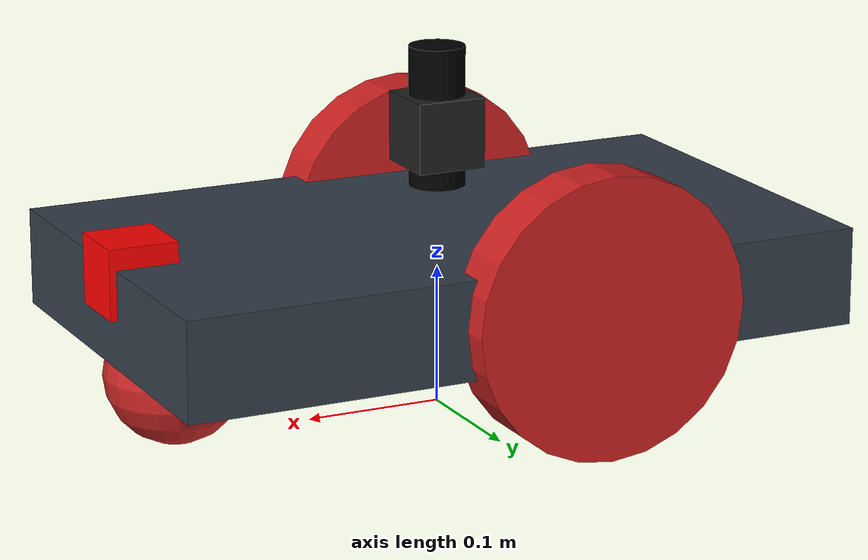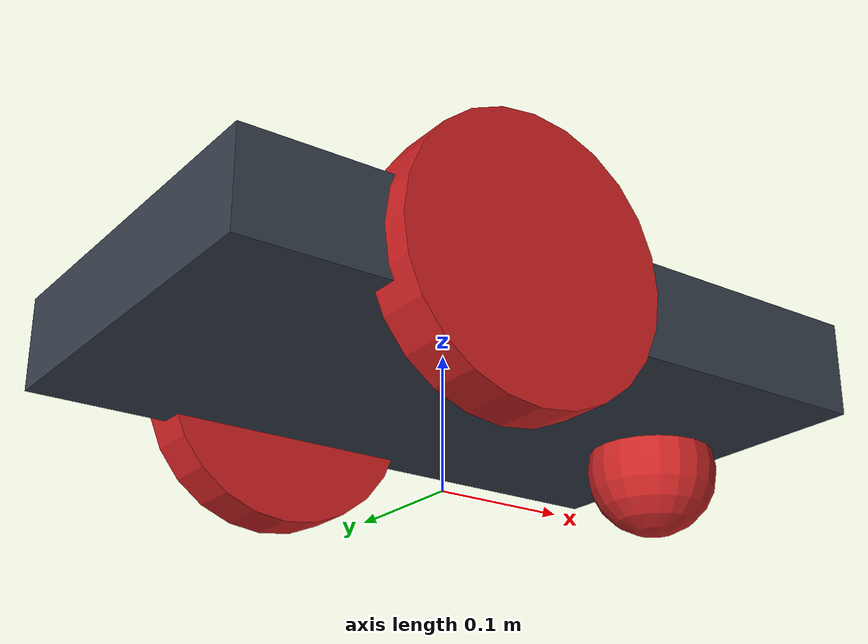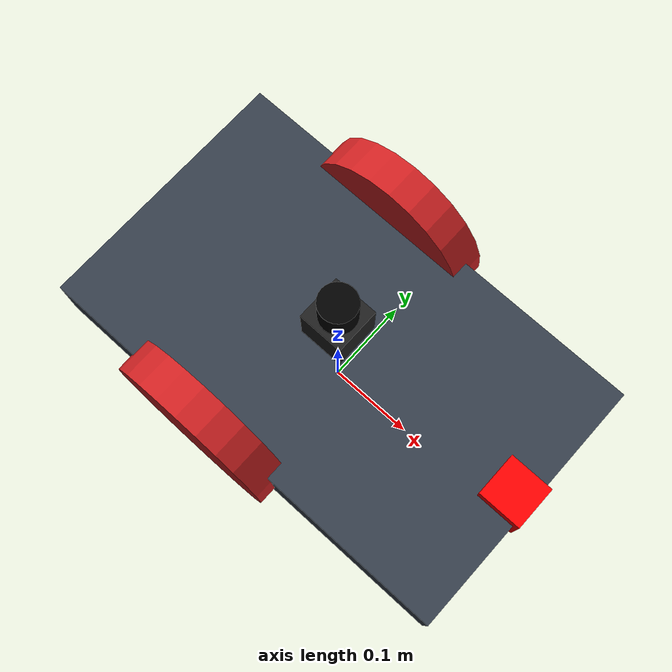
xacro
<?xml version="1.0"?>
<robot xmlns:xacro="http://www.ros.org/wiki/xacro" name="robot_hw2.xacro">
<xacro:include filename="$(find robot_urdf)/urdf/robot_hw2.gazebo"/>

	<xacro:property name="length_wheel" value="0.04" />
	<xacro:property name="radius_wheel" value="0.1" />

	<xacro:macro name="default_inertial" params="mass">
               <inertial>
                       <mass value="${mass}" />
                       <origin rpy="0 1.5707 1.5707" xyz="0 0 0"/>
                       <inertia ixx="0.000526666666667" ixy="0" ixz="0" iyy="0.000526666666667" iyz="0" izz="0.001"/>
               </inertial>
	</xacro:macro>

    <xacro:macro name="wheel_geometry">
		<geometry>
       			<cylinder length="${length_wheel}" radius="${radius_wheel}"/>
     	</geometry>
	</xacro:macro>

  <material name="black">
    <color rgba="0.0 0.0 0.0 1.0"/>
  </material>
  <material name="blue">
    <color rgba="0.203125 0.23828125 0.28515625 1.0"/>
  </material>
  <material name="green">
    <color rgba="0.0 0.8 0.0 1.0"/>
  </material>
  <material name="grey">
    <color rgba="0.2 0.2 0.2 1.0"/>
  </material>
  <material name="orange">
    <color rgba="1.0 0.423529411765 0.0392156862745 1.0"/>
  </material>
  <material name="brown">
    <color rgba="0.870588235294 0.811764705882 0.764705882353 1.0"/>
  </material>
  <material name="red">
    <color rgba="0.80078125 0.12890625 0.1328125 1.0"/>
  </material>
  <material name="white">
    <color rgba="1.0 1.0 1.0 1.0"/>
  </material>

    <link name="base_footprint"/>

	  <link name="base_link">
    <!-- pose and inertial -->
    <pose>0 0 0.1 0 0 0</pose>
    <inertial>
      <mass value="5"/>
      <origin rpy="0 0 0" xyz="0 0 0.1"/>
      <inertia ixx="0.0395416666667" ixy="0" ixz="0" iyy="0.106208333333" iyz="0" izz="0.106208333333"/>
    </inertial>
    <!-- body -->
    <collision name="collision_chassis">
      <geometry>
        <box size="0.5 0.3 0.07"/>
      </geometry>
    </collision>
    <visual>
      <origin rpy="0 0 0" xyz="0 0 0"/>
      <geometry>
        <box size="0.5 0.3 0.07"/>
      </geometry>
      <material name="blue"/>
    </visual>
    <!-- caster front -->
    <collision name="caster_front_collision">
      <origin rpy=" 0 0 0" xyz="0.35 0 -0.05"/>
      <geometry>
        <sphere radius="0.05"/>
      </geometry>
    </collision>
    <visual name="caster_front_visual">
      <origin rpy=" 0 0 0" xyz="0.2 0 -0.05"/>
      <geometry>
        <sphere radius="0.05"/>
      </geometry>
    </visual>
  </link>

    <!-- Add the new base_footprint -->
  <joint name="base_footprint_joint" type="fixed">
    <parent link="base_footprint"/>
    <child link="base_link"/>
    <origin xyz="0 0 0.1" rpy="0 0 0"/>
  </joint>

  <!--I add here above are the base_footprint-->

   <link name="link_right_wheel">
    <xacro:default_inertial mass="0.2"/>
    <collision name="link_right_wheel_collision">
      <origin rpy="0 1.5707 1.5707" xyz="0 0 0"/>
      <xacro:wheel_geometry />
    </collision>
    <visual name="link_right_wheel_visual">
      <origin rpy="0 1.5707 1.5707" xyz="0 0 0"/>
      <xacro:wheel_geometry />
      <material name="red"/>
    </visual>
  </link>

   <link name="link_left_wheel">
    <xacro:default_inertial mass="0.2"/>
    <collision name="link_left_wheel_collision">
      <origin rpy="0 1.5707 1.5707" xyz="0 0 0"/>
      <xacro:wheel_geometry />
    </collision>
    <visual name="link_left_wheel_visual">
      <origin rpy="0 1.5707 1.5707" xyz="0 0 0"/>
      <xacro:wheel_geometry />
      <material name="red"/>
    </visual>
  </link>

  <joint name="joint_right_wheel" type="continuous">
    <origin rpy="0 0 0" xyz="-0.05 0.15 0"/>
    <child link="link_right_wheel"/>
    <parent link="base_link"/>
    <axis rpy="0 0 0" xyz="0 1 0"/>
    <limit effort="10000" velocity="1000"/>
    <joint_properties damping="1.0" friction="1.0"/>
  </joint>

  <joint name="joint_left_wheel" type="continuous">
    <origin rpy="0 0 0" xyz="-0.05 -0.15 0"/>
    <child link="link_left_wheel"/>
    <parent link="base_link"/>
    <axis rpy="0 0 0" xyz="0 1 0"/>
    <limit effort="10000" velocity="1000"/>
    <joint_properties damping="1.0" friction="1.0"/>
  </joint>

  <link name="camera_link">
	    <collision>
	      <origin xyz="0 0 0.025" rpy="0 0 0"/>
	      <geometry>
		<box size="0.05 0.05 0.05"/>
	      </geometry>
	    </collision>
	    <visual>
	      <origin xyz="0 0 0.025" rpy="0 0 0"/>
	      <geometry>
		<box size="0.05 0.05 0.05"/>
	      </geometry>
	      <material name="red">
		<color rgba="1 0 0 1"/>
	      </material>
	    </visual>
	    <inertial>
      <!-- mass, 1e-5 to 5 -->
	      <mass value="1" />
	      <origin xyz="0 0 0" rpy="0 0 0"/>
	      <inertia ixx="1e-6" ixy="0" ixz="0" iyy="1e-6" iyz="0" izz="1e-6" />
	    </inertial>
  </link>

  <joint name="camera_joint" type="fixed">
	    <axis xyz="0 1 0" />
	    <origin xyz="0.23 0 0.0" rpy="0 0 0"/>
	    <parent link="base_link"/>
	    <child link="camera_link"/>
	 </joint>

<!-- laser-->
 <link name="laser_link">
    <visual>
      <origin xyz="0 0 0.1" rpy="0 0 0"/>
      <geometry>
        <cylinder length="0.1" radius="0.02"/>
      </geometry>
      <material name="black"/>
    </visual>
    <collision>
      <origin xyz="0 0 0.1" rpy="0 0 0"/>
      <geometry>
        <cylinder length="0.01" radius="0.02"/>
      </geometry>
    </collision>
    <inertial>
      <mass value="0.1" />
      <origin xyz="0 0 0" rpy="0 0 0"/>
      <inertia ixx="0.01" ixy="0" ixz="0" iyy="0.01" iyz="0" izz="0.01"/>
    </inertial>
  </link>

<!-- Imu-->
  <joint name="laser_joint" type="fixed">
    <parent link="base_link"/>
    <child link="laser_link"/>
    <origin xyz="0 0 0.01" rpy="0 0 0"/>
  </joint>

  <link name="imu_link">
  <inertial>
    <mass value="0.001" />
    <origin xyz="0 0 0" rpy="0 0 0" />
    <inertia ixx="1e-6" ixy="0" ixz="0" iyy="1e-6" iyz="0" izz="1e-6" />
  </inertial>
  <visual>
    <origin xyz="0 0 0" rpy="0 0 0" />
    <geometry>
      <box size="0.05 0.05 0.05" />
    </geometry>
    <material name="Gazebo/Black" />
  </visual>
</link>

<joint name="imu_joint" type="fixed">
  <parent link="base_link" />
  <child link="imu_link" />
  <origin xyz="0 0 0.1" rpy="0 0 0" />
</joint>

</robot>
